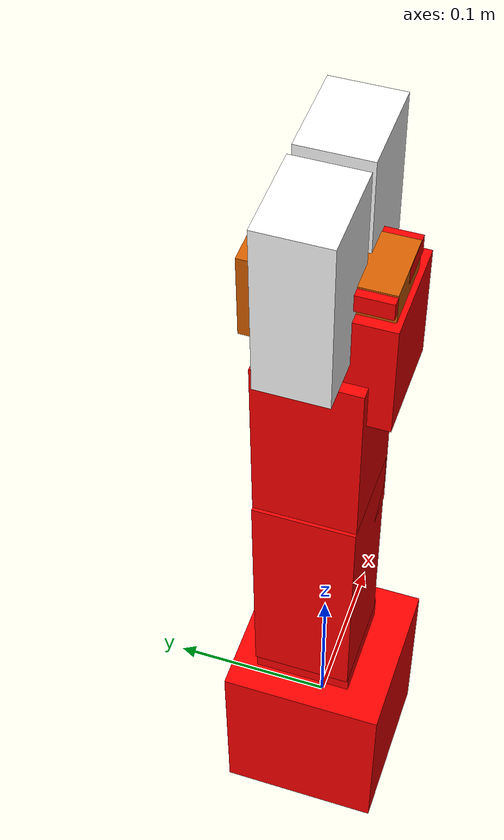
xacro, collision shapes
<?xml version="1.0"?>

<robot xmlns:xacro="http://www.ros.org/wiki/xacro" name="armando">

  <xacro:include filename="$(find armando_description)/urdf/armando_hardware_interface.xacro"/>
  <xacro:include filename="$(find armando_gazebo)/urdf/armando_camera.xacro" />

  <gazebo>
    <plugin filename="libgz_ros2_control-system.so" name="gz_ros2_control::GazeboSimROS2ControlPlugin">
          <parameters>$(find armando_description)/config/controllers.yaml</parameters>
    </plugin>
  </gazebo>

  <material name="red">
    <color rgba="1 0 0 1"/>
  </material>

  <link name="base_link">
    <visual>
      <geometry>
        <mesh filename="package://armando_description/meshes/base_link.stl" scale="0.001 0.001 0.001"/>
      </geometry>
      <origin rpy="0 0 0" xyz="0 0 0"/>
      <material name="red"/>
    </visual>
    <collision>
      <geometry>
        <box size = "0.1 0.1 0.12"/>
      </geometry>
      <origin rpy="0 0 0" xyz="0 0 0"/>
    </collision>
    <inertial>
      <mass value="0.1"/>
      <inertia ixx="1.06682889e+08" ixy="0.0" ixz="0.0" iyy="9.92165844e+07" iyz="0.0" izz="1.26939175e+08"/>
    </inertial>
  </link>

  <xacro:armando_camera
    link_name="camera_link"
    joint_name="camera_joint"
    parent_link="base_link"
    xyz="0.05 0 0.1"
    rpy="0 -1.57 0"
  />

  <joint name="base_1_2" type="fixed">
    <parent link="base_link"/>
    <child link="base_turn"/>
    <origin xyz="-0.0011 -0.011 0.05"/>
  </joint>

  <link name="base_turn">
    <visual>
      <geometry>
        <mesh filename="package://armando_description/meshes/base_turn.stl" scale="0.001 0.001 0.001"/>
      </geometry>
      <origin rpy="0 0 0" xyz="0 0 0"/>
      <material name="red"/>
    </visual>
    <collision>
      <geometry>
        <box size="0.06 0.06 0.01"/>
      </geometry>
      <origin rpy="0 0 0" xyz="0 0 0"/>
    </collision>
    <inertial>
      <mass value="0.1"/>
      <inertia ixx="1.35223008e+07" ixy="0.0" ixz="0.0" iyy="8.13814925e+06" iyz="0.0" izz="2.14903814e+07"/>
    </inertial>
  </link>

  <joint name="j0" type="revolute">
    <parent link="base_turn"/>
    <child link="base_turn_rot"/>
    <origin xyz="-0.0 0.0155 0.013" rpy = "0 0 -1.57"/>
    <axis xyz="0 0 1" />
    <limit effort="300" velocity="0.1" lower="-2.57" upper="2.57"/>
  </joint>

  <link name="base_turn_rot">
    <visual>
      <geometry>
        <mesh filename="package://armando_description/meshes/base_turn_table_rot.stl" scale="0.001 0.001 0.001"/>
      </geometry>
      <material name="red"/>
    </visual>
    <collision>
      <geometry>
         <box size="0.06 0.06 0.03"/>
        </geometry>
      <origin rpy="0 0 0" xyz="0 0 0"/>
    </collision>

    <inertial>
      <mass value="0.1"/>
      <inertia ixx="0.001" ixy="0.0" ixz="0.0" iyy="0.001" iyz="0.0" izz="0.001"/>
    </inertial>
  </link>

  <joint name="base_turn_rot_dyn2" type="fixed">
    <parent link="base_turn_rot"/>
    <child link="dyn2"/>
    <origin xyz="0 0 0.0385" rpy="0 1.57 1.57 "/>
  </joint>

  <link name="dyn2">
    <visual>
      <geometry>
        <mesh filename="package://armando_description/meshes/dyn.stl" scale="0.01 0.01 0.01"/>
      </geometry>

      <origin rpy="0 0 0" xyz="0 0 0"/>
    </visual>
    <collision>
      <geometry>
          <box size="0.08 0.05 0.05"/>
        </geometry>
      <origin rpy="0 0 0" xyz="0 0 0"/>
    </collision>
     <inertial>
      <mass value="0.1"/>
      <inertia ixx="6.90013881e-05" ixy="0.0" ixz="0.0" iyy="1.24554875e-04" iyz="0.0" izz="1.04295793e-04"/>
    </inertial>
  </link>

  <joint name="j1" type="revolute">
    <parent link="dyn2"/>
    <child link="dyn2_r"/>
    <origin xyz="0 0 0.0" rpy="0 0 0"/>
    <axis xyz="0 0 1" />
    <limit effort="300" velocity="0.1" lower="-3.14" upper="3.14"/>
  </joint>

  <link name="dyn2_r">

  </link>

  <joint name="dyn2_f4" type="fixed">
    <parent link="dyn2_r"/>
    <child link="f4"/>
    <origin xyz="-0.047 0.0 -0.003" rpy="0 1.57 1.57"/>
  </joint>

  <link name="f4">
    <visual>
      <geometry>
        <mesh filename="package://armando_description/meshes/f4_n_f3.stl" scale="0.001 0.001 0.001"/>
      </geometry>
      <origin rpy="0 0 0" xyz="0 0 0"/>
      <material name="red"/>
    </visual>
    <collision>
      <geometry>
          <box size = "0.06 0.15 0.06"/>
        </geometry>
      <origin rpy="0 0 0" xyz="0 0 0"/>
    </collision>
     <inertial>
      <mass value="0.1"/>
      <inertia ixx="6.90013881e-05" ixy="0.0" ixz="0.0" iyy="1.24554875e-04" iyz="0.0" izz="1.04295793e-04"/>
    </inertial>
  </link>

  <joint name="d4_dyn3" type="fixed">
    <parent link="f4"/>
    <child link="dyn3"/>
    <origin xyz="-0.004 0.0645 0 " rpy="-1.57 3.14 1.57"/>
  </joint>

  <link name="dyn3">
    <visual>
      <geometry>
        <mesh filename="package://armando_description/meshes/dyn.stl" scale="0.01 0.01 0.01"/>
      </geometry>
      <origin rpy="0 0 0" xyz="0 0 0"/>
    </visual>
    <collision>
      <geometry>
          <box size="0.08 0.05 0.05"/>
        </geometry>
      <origin rpy="0 0 0" xyz="0 0 0"/>
    </collision>
     <inertial>
      <mass value="0.1"/>
      <inertia ixx="6.90013881e-05" ixy="0.0" ixz="0.0" iyy="1.24554875e-04" iyz="0.0" izz="1.04295793e-04"/>
    </inertial>
  </link>

  <joint name="j2" type="revolute">
    <parent link="dyn3"/>
    <child link="dyn3_r"/>
    <origin xyz="0 0 0.0" rpy="0 0 0"/>
    <axis xyz="0 0 1" />
    <limit effort="300" velocity="0.1" lower="-3.14" upper="3.14"/>
  </joint>

 <link name="dyn3_r">

  </link>

  <joint name="dyn3_f5" type="fixed">
    <parent link="dyn3_r"/>
    <child link="f5"/>
    <origin xyz="-0.046 -0.0 -0.002" rpy="1.57 1.57 3.1415 "/>
  </joint>

  <link name="f5">
    <visual>
      <geometry>
        <mesh filename="package://armando_description/meshes/f4_n_f3.stl" scale="0.001 0.001 0.001"/>
      </geometry>
      <origin rpy="0 0 0" xyz="0 0 0"/>
      <material name="red"/>
    </visual>
    <collision>
      <geometry>
          <box size = "0.06 0.15 0.06"/>
        </geometry>
      <origin rpy="0 0 0" xyz="0 0 0"/>
    </collision>

    <inertial>
      <mass value="0.1"/>
  <inertia ixx="0.001" ixy="0.0" ixz="0.0" iyy="0.001" iyz="0.0" izz="0.001"/>    </inertial>
  </link>

  <joint name="f5_dyn4" type="fixed">
    <parent link="f5"/>
    <child link="dyn4"/>
    <origin xyz="-0.004 0.065 -0.0" rpy="-1.57 3.1415 1.57 "/>
  </joint>

  <link name="dyn4">
    <visual>
      <geometry>
        <mesh filename="package://armando_description/meshes/dyn.stl" scale="0.01 0.01 0.01"/>
      </geometry>

      <origin rpy="0 0 0" xyz="0 0 0"/>
    </visual>
    <collision>
      <geometry>
          <box size="0.08 0.05 0.05"/>
        </geometry>
      <origin rpy="0 0 0" xyz="0 0 0"/>
    </collision>

    <inertial>
      <mass value="0.1"/>
      <inertia ixx="6.90013881e-05" ixy="0.0" ixz="0.0" iyy="1.24554875e-04" iyz="0.0" izz="1.04295793e-04"/>
    </inertial>
  </link>

  <joint name="j3" type="revolute">
    <parent link="dyn4"/>
    <child link="dyn4_r"/>
    <origin xyz="0 0 0.0" rpy="0 0 0"/>
    <axis xyz="0 0 1" />
    <limit effort="300" velocity="0.1" lower="-3.14" upper="3.14"/>
  </joint>

  <link name="dyn4_r">

  </link>

  <joint name="f5_wrist" type="fixed">
    <parent link="dyn4_r"/>
    <child link="wrist"/>
    <origin xyz="-0.017 -0.013 0.003" rpy="1.57 1.57 -1.57"/>
  </joint>

  <link name="wrist">
    <visual>
      <geometry>
        <mesh filename="package://armando_description/meshes/wrist.stl" scale="0.001 0.001 0.001"/>
      </geometry>
      <origin rpy="0 0 0" xyz="0 0 0"/>
      <material name="red"/>
    </visual>
    <collision>
      <geometry>
        <box size = "0.06 0.06 0.07"/>
      </geometry>
      <origin rpy="0 0 0" xyz="0 0 0"/>
    </collision>

     <inertial>
      <mass value="0.1"/>
      <inertia ixx="6.90013881e-05" ixy="0.0" ixz="0.0" iyy="1.24554875e-04" iyz="0.0" izz="1.04295793e-04"/>
    </inertial>
  </link>

  <joint name="wrist_dyn5" type="fixed">
    <parent link="wrist"/>
    <child link="dyn5"/>
    <origin xyz="0.0038 -0.013 0.0275" rpy="0 0 1.57"/>
  </joint>

    <link name="dyn5">
    <visual>
      <geometry>
        <mesh filename="package://armando_description/meshes/dyn.stl" scale="0.01 0.01 0.01"/>
      </geometry>
      <origin rpy="0 0 0" xyz="0 0 0"/>
    </visual>
    <collision>
      <geometry>
          <box size="0.08 0.04 0.05"/>
        </geometry>
      <origin rpy="0 0 0" xyz="0 0 0"/>
    </collision>

    <inertial>
      <mass value="0.1"/>
      <inertia ixx="6.90013881e-05" ixy="0.0" ixz="0.0" iyy="1.24554875e-04" iyz="0.0" izz="1.04295793e-04"/>
    </inertial>
  </link>

  <joint name="dyn5_dyn5_r" type="fixed">
    <parent link="dyn5"/>
    <child link="dyn5_r"/>
    <origin xyz="0 0 0.0" rpy="0 0 0"/>
    <axis xyz="0 0 1" />
    <limit effort="300" velocity="0.1" lower="-3.14" upper="3.14"/>
  </joint>

  <link name="dyn5_r">

  </link>

  <joint name="wrist_rotate_dyn5" type="fixed">
    <parent link="dyn5_r"/>
    <child link="crawer_base"/>
    <origin xyz="0.015 0 0.019" rpy="0 0 1.57"/>
  </joint>

  <link name="crawer_base">
    <visual>
      <geometry>
        <mesh filename="package://armando_description/meshes/the_crawer_base.stl" scale="0.001 0.001 0.001"/>
      </geometry>
      <origin rpy="0 0 0" xyz="0 0 0"/>
      <material name="red"/>
    </visual>
    <collision>
      <geometry>
          <box size="0.05 0.05 0.01"/>
        </geometry>
      <origin rpy="0 0 0" xyz="0 0 0"/>
    </collision>

    <inertial>
      <mass value="0.1"/>
      <inertia ixx="6.90013881e-05" ixy="0.0" ixz="0.0" iyy="1.24554875e-04" iyz="0.0" izz="1.04295793e-04"/>
    </inertial>
  </link>

  <joint name="crawer_base_crawer_left" type="fixed">
    <parent link="crawer_base"/>
    <child link="crawer_left"/>
    <origin xyz="-0.03 0.015 0.01" rpy="0 -1.57 0"/>
  </joint>

  <link name="crawer_left">
    <visual>
      <geometry>
        <mesh filename="package://armando_description/meshes/the_crawer.stl" scale="0.001 0.001 0.001"/>
      </geometry>
      <origin rpy="0 0 0" xyz="0 0 0"/>
      <material name="white">
        <color rgba="1 1 1 1"/>
      </material>
    </visual>
    <collision>
      <geometry>
          <box size="0.1 0.04 0.053"/>
        </geometry>
      <origin rpy="0 0 0" xyz="0 0 0"/>
    </collision>

    <inertial>
      <mass value="0.1"/>
      <inertia ixx="6.90013881e-05" ixy="0.0" ixz="0.0" iyy="1.24554875e-04" iyz="0.0" izz="1.04295793e-04"/>
    </inertial>
  </link>

  <joint name="crawer_base_crawer_right" type="fixed">
    <parent link="crawer_base"/>
    <child link="crawer_right"/>
    <origin xyz="0.03 0.015 0.01" rpy="3.1415 -1.57 0"/>
  </joint>

  <link name="crawer_right">
    <visual>
      <geometry>
        <mesh filename="package://armando_description/meshes/the_crawer.stl" scale="0.001 0.001 0.001"/>
      </geometry>
      <origin rpy="0 0 0" xyz="0 0 0"/>
      <material name="white">
        <color rgba="1 1 1 1"/>
      </material>
    </visual>
    <collision>
      <geometry>
          <box size="0.1 0.04 0.053"/>
        </geometry>
      <origin rpy="0 0 0" xyz="0 0 0"/>
    </collision>

    <inertial>
      <mass value="0.1"/>
      <inertia ixx="6.90013881e-05" ixy="0.0" ixz="0.0" iyy="1.24554875e-04" iyz="0.0" izz="1.04295793e-04"/>
    </inertial>
  </link>

  <ros2_control name="ArmandoSystem" type="system">
    <hardware>
      <plugin>gz_ros2_control/GazeboSimSystem</plugin>
    </hardware>

     <!--Call the macro for each joint -->
    <xacro:hardware_interface_for_joint joint_name="j0"/>
    <xacro:hardware_interface_for_joint joint_name="j1"/>
    <xacro:hardware_interface_for_joint joint_name="j2"/>
    <xacro:hardware_interface_for_joint joint_name="j3"/>
  </ros2_control>
</robot>

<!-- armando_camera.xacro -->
<robot xmlns:xacro="http://www.ros.org/wiki/xacro">
  <xacro:macro name="armando_camera" params="link_name joint_name parent_link xyz rpy">

    <joint name="${joint_name}" type="fixed">
      <parent link="${parent_link}"/>
      <child link="${link_name}"/>
      <origin xyz="${xyz}" rpy="${rpy}"/>
    </joint>

    <link name="${link_name}">
      <visual>
        <geometry>
          <box size="0.02 0.02 0.02"/>
        </geometry>
        <material name="blue">
          <color rgba="0 0 1 1"/>
        </material>
      </visual>
      <collision>
        <geometry>
          <box size="0.02 0.02 0.02"/>
        </geometry>
      </collision>
      <inertial>
        <mass value="0.01"/>
        <inertia ixx="0.0000033" ixy="0.0" ixz="0.0" iyy="0.0000033" iyz="0.0" izz="0.0000033"/>
      </inertial>
    </link>

    <gazebo>
    	<plugin filename="gz-sim-sensors-system"
		    name="gz::sim::systems::Sensors">
		    <render_engine>ogre2</render_engine>
	    </plugin>
    </gazebo>

    <gazebo reference="${link_name}">
      <sensor name="camera_sensor" type="camera">
        <always_on>1</always_on>
        <update_rate>30</update_rate>
        <visualize>true</visualize>
        <topic>camera</topic>
        <camera name="camera">
          <horizontal_fov>1.3962634</horizontal_fov>
          <image>
            <width>640</width>
            <height>480</height>
            <format>R8G8B8</format>
          </image>
          <clip>
            <near>0.02</near>
            <far>300</far>
          </clip>
          <noise>
            <type>gaussian</type>
            <mean>0.0</mean>
            <stddev>0.007</stddev>
          </noise>
        </camera>
      </sensor>
    </gazebo>

  </xacro:macro>
</robot>
